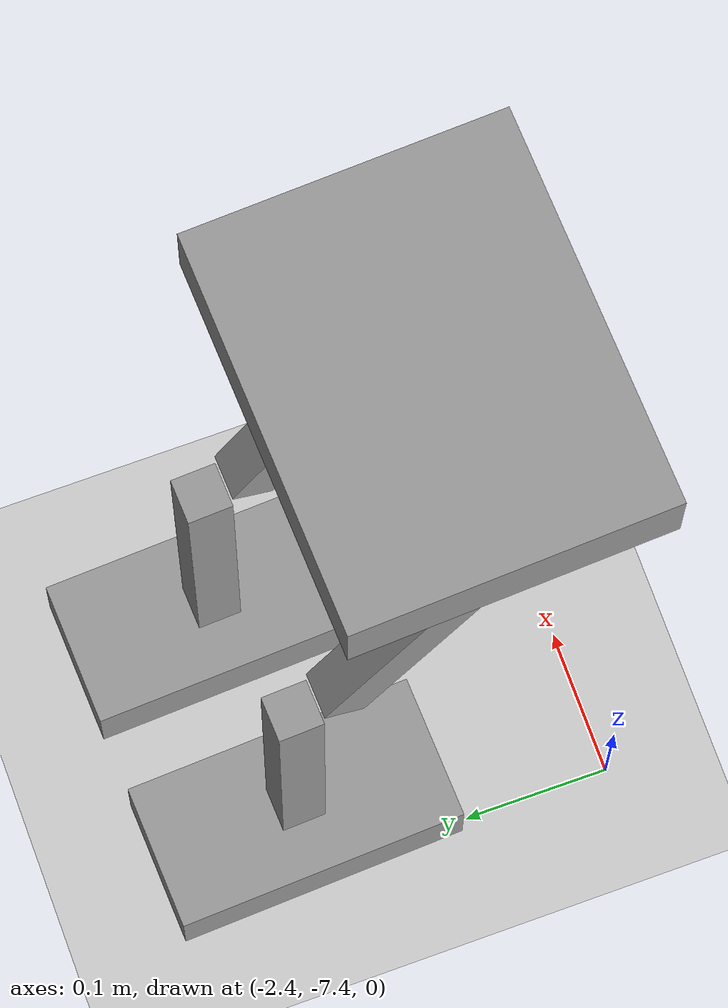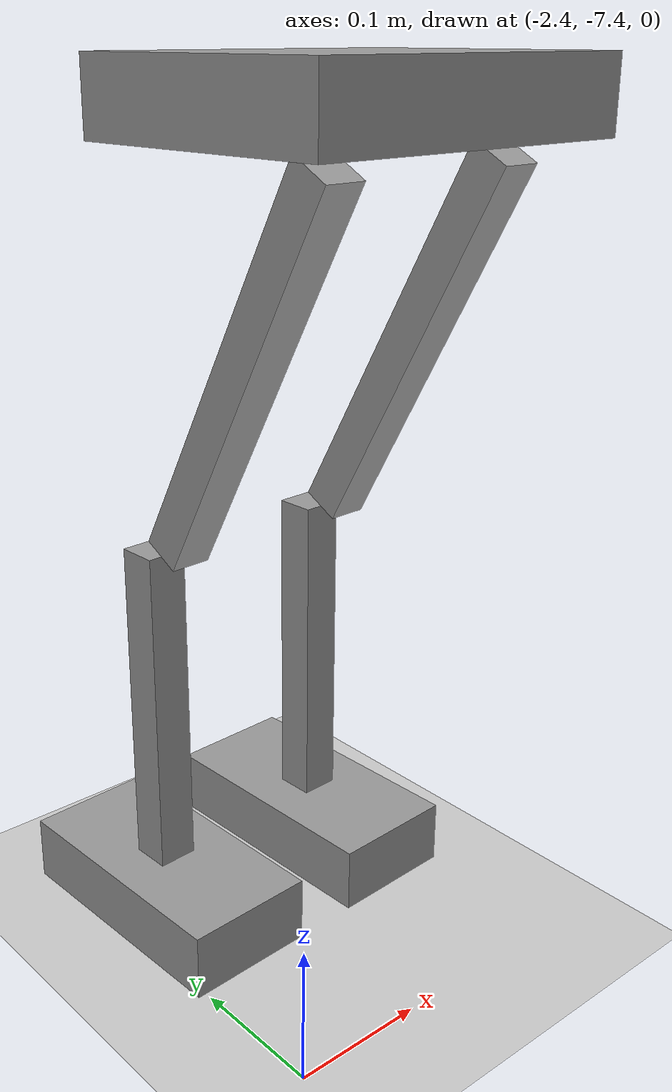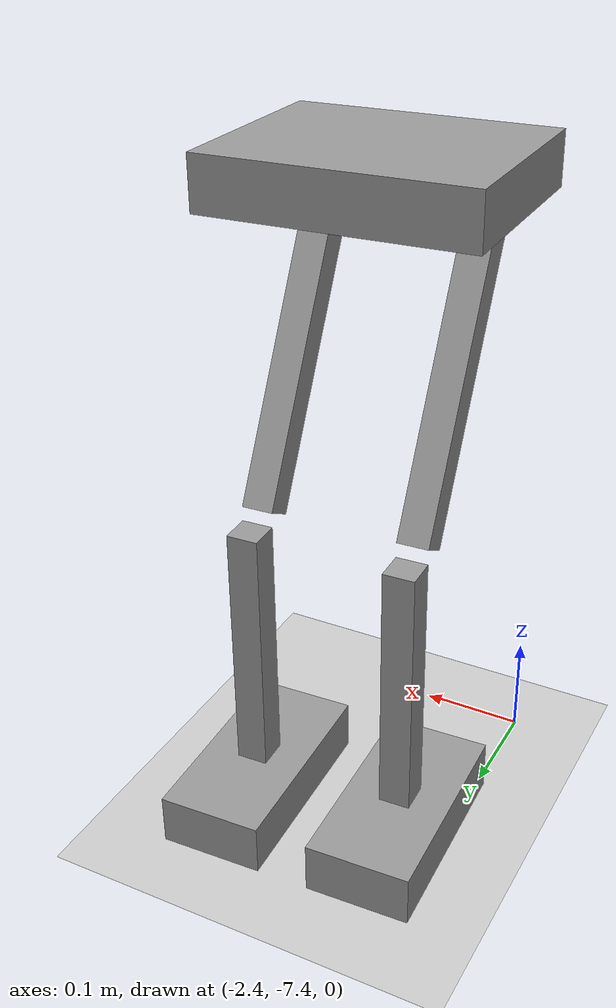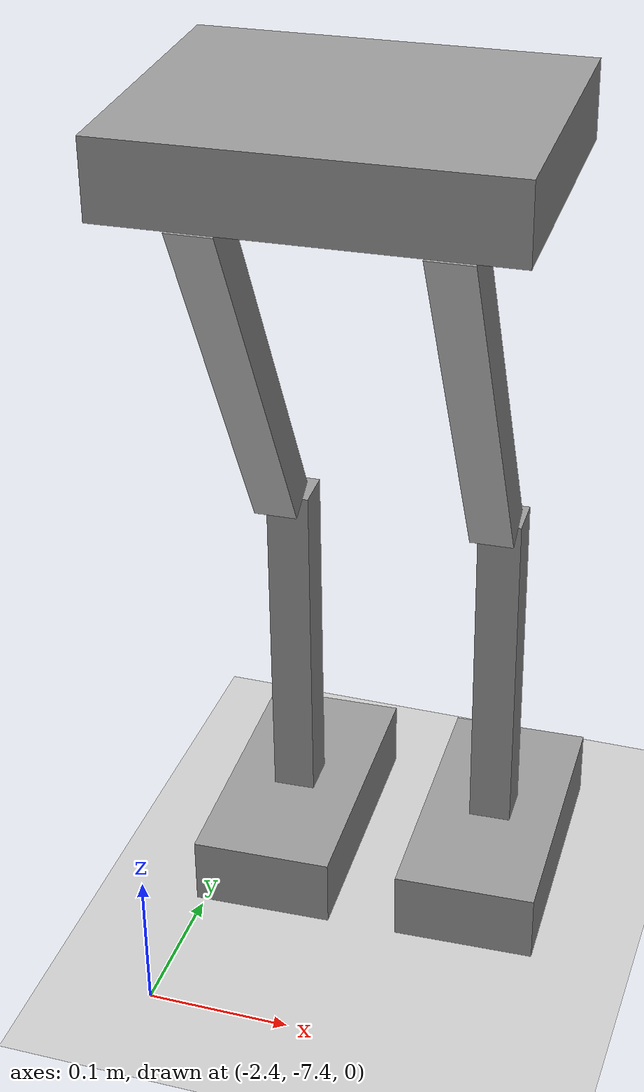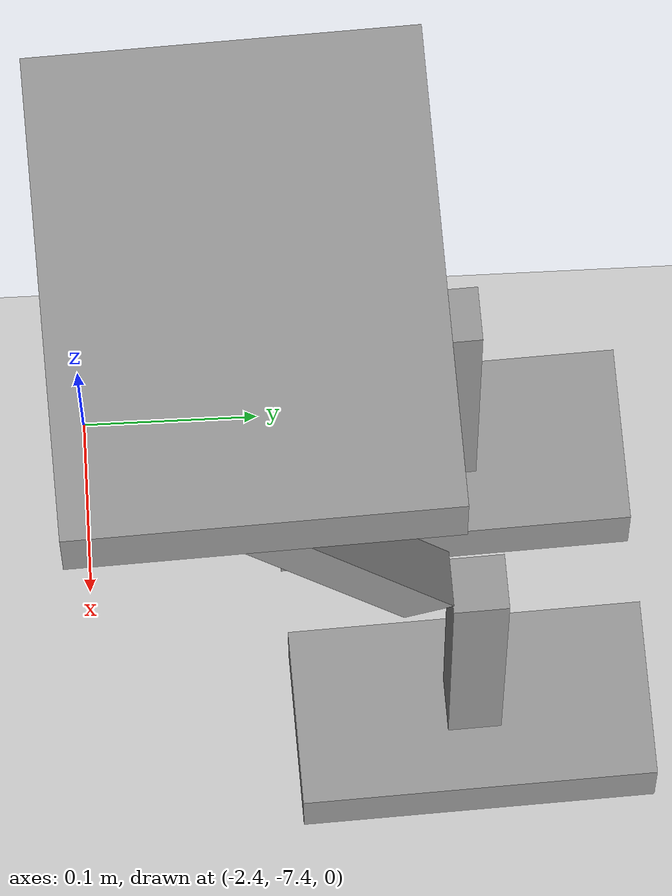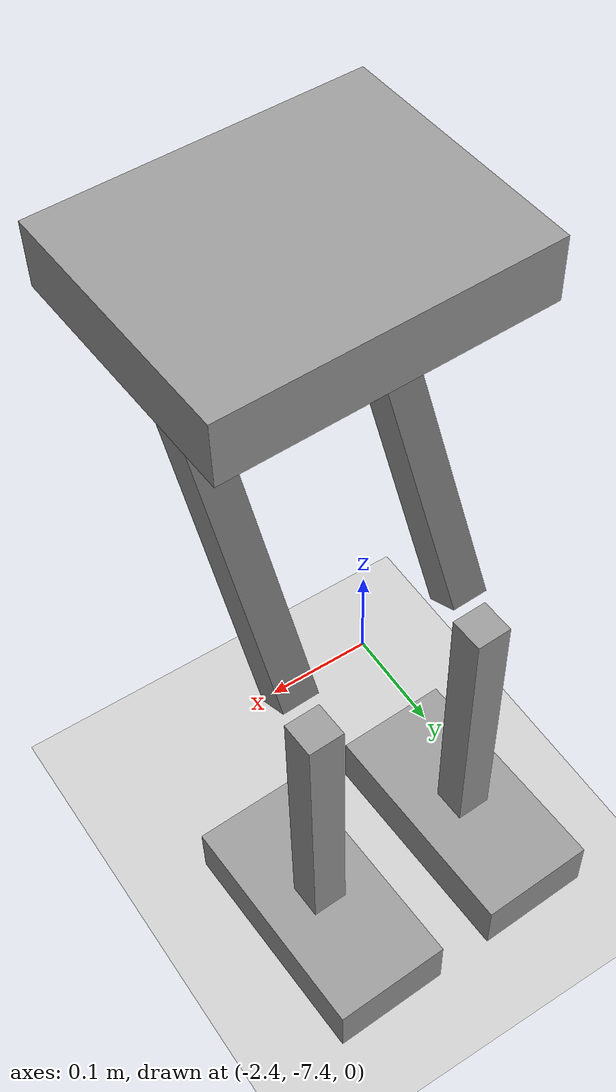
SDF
<sdf version="1.6">
 <world name="default">
  <model name="ground_plane">
   <static>1</static>
   <link name="link">
    <collision name="collision">
     <geometry><plane><normal>0 0 1</normal><size>100 100</size></plane></geometry>
     <surface><friction><ode><mu>100</mu><mu2>50</mu2></ode></friction></surface>
    </collision>
    <visual name="visual">
     <cast_shadows>0</cast_shadows>
     <geometry><plane><normal>0 0 1</normal><size>100 100</size></plane></geometry>
     <material>
      <script><uri>file://media/materials/scripts/gazebo.material</uri><name>Gazebo/Grey</name></script>
     </material>
    </visual>
   </link>
  </model>
  <model name="HumonoidRobot_4">
   <link name="link_0">
    <pose>-0.075081 0.045022 -0.236474 0 -0 0</pose>
    <inertial>
     <mass>1</mass>
     <inertia>
      <ixx>0.166667</ixx>
      <ixy>0</ixy>
      <ixz>0</ixz>
      <iyy>0.166667</iyy>
      <iyz>0</iyz>
      <izz>0.166667</izz>
     </inertia>
    </inertial>
    <visual name="visual">
     <geometry><box><size>0.1 0.2 0.05</size></box></geometry>
     <material>
      <lighting>1</lighting>
      <script><uri>file://media/materials/scripts/gazebo.material</uri><name>Gazebo/Grey</name></script>
      <shader type="pixel"><normal_map>__default__</normal_map></shader>
      <ambient>0.3 0.3 0.3 1</ambient>
      <diffuse>0.7 0.7 0.7 1</diffuse>
      <specular>0.01 0.01 0.01 1</specular>
      <emissive>0 0 0 1</emissive>
     </material>
    </visual>
    <collision name="collision">
     <geometry><box><size>0.1 0.2 0.05</size></box></geometry>
     <surface>
      <friction>
       <ode><mu>1</mu><mu2>1</mu2><fdir1>0 0 0</fdir1><slip1>0</slip1><slip2>0</slip2></ode>
       <torsional>
        <coefficient>1</coefficient>
        <patch_radius>0</patch_radius>
        <surface_radius>0</surface_radius>
        <use_patch_radius>1</use_patch_radius>
        <ode><slip>0</slip></ode>
       </torsional>
      </friction>
      <bounce><restitution_coefficient>0</restitution_coefficient><threshold>1e+06</threshold></bounce>
      <contact>
       <collide_without_contact>0</collide_without_contact>
       <collide_without_contact_bitmask>1</collide_without_contact_bitmask>
       <collide_bitmask>1</collide_bitmask>
       <ode>
        <soft_cfm>0</soft_cfm>
        <soft_erp>0.2</soft_erp>
        <kp>1e+13</kp>
        <kd>1</kd>
        <max_vel>0.01</max_vel>
        <min_depth>0</min_depth>
       </ode>
       <bullet>
        <split_impulse>1</split_impulse>
        <split_impulse_penetration_threshold>-0.01</split_impulse_penetration_threshold>
        <soft_cfm>0</soft_cfm>
        <soft_erp>0.2</soft_erp>
        <kp>1e+13</kp>
        <kd>1</kd>
       </bullet>
      </contact>
     </surface>
    </collision>
   </link>
   <link name="link_0_clone">
    <pose>0.074919 0.045022 -0.236474 0 -0 0</pose>
    <inertial>
     <mass>1</mass>
     <inertia>
      <ixx>0.166667</ixx>
      <ixy>0</ixy>
      <ixz>0</ixz>
      <iyy>0.166667</iyy>
      <iyz>0</iyz>
      <izz>0.166667</izz>
     </inertia>
    </inertial>
    <visual name="visual">
     <geometry><box><size>0.1 0.2 0.05</size></box></geometry>
     <material>
      <lighting>1</lighting>
      <script><uri>file://media/materials/scripts/gazebo.material</uri><name>Gazebo/Grey</name></script>
      <shader type="pixel"><normal_map>__default__</normal_map></shader>
      <ambient>0.3 0.3 0.3 1</ambient>
      <diffuse>0.7 0.7 0.7 1</diffuse>
      <specular>0.01 0.01 0.01 1</specular>
      <emissive>0 0 0 1</emissive>
     </material>
    </visual>
    <collision name="collision">
     <geometry><box><size>0.1 0.2 0.05</size></box></geometry>
     <surface>
      <friction>
       <ode><mu>1</mu><mu2>1</mu2><fdir1>0 0 0</fdir1><slip1>0</slip1><slip2>0</slip2></ode>
       <torsional>
        <coefficient>1</coefficient>
        <patch_radius>0</patch_radius>
        <surface_radius>0</surface_radius>
        <use_patch_radius>1</use_patch_radius>
        <ode><slip>0</slip></ode>
       </torsional>
      </friction>
      <bounce><restitution_coefficient>0</restitution_coefficient><threshold>1e+06</threshold></bounce>
      <contact>
       <collide_without_contact>0</collide_without_contact>
       <collide_without_contact_bitmask>1</collide_without_contact_bitmask>
       <collide_bitmask>1</collide_bitmask>
       <ode>
        <soft_cfm>0</soft_cfm>
        <soft_erp>0.2</soft_erp>
        <kp>1e+13</kp>
        <kd>1</kd>
        <max_vel>0.01</max_vel>
        <min_depth>0</min_depth>
       </ode>
       <bullet>
        <split_impulse>1</split_impulse>
        <split_impulse_penetration_threshold>-0.01</split_impulse_penetration_threshold>
        <soft_cfm>0</soft_cfm>
        <soft_erp>0.2</soft_erp>
        <kp>1e+13</kp>
        <kd>1</kd>
       </bullet>
      </contact>
     </surface>
    </collision>
   </link>
   <link name="link_0_clone_0">
    <pose>0.000486 -0.069978 0.341184 0 -0 0</pose>
    <inertial>
     <mass>1</mass>
     <inertia>
      <ixx>0.166667</ixx>
      <ixy>0</ixy>
      <ixz>0</ixz>
      <iyy>0.166667</iyy>
      <iyz>0</iyz>
      <izz>0.166667</izz>
     </inertia>
    </inertial>
    <visual name="visual">
     <geometry><box><size>0.25 0.2 0.05</size></box></geometry>
     <material>
      <lighting>1</lighting>
      <script><uri>file://media/materials/scripts/gazebo.material</uri><name>Gazebo/Grey</name></script>
      <shader type="pixel"><normal_map>__default__</normal_map></shader>
      <ambient>0.3 0.3 0.3 1</ambient>
      <diffuse>0.7 0.7 0.7 1</diffuse>
      <specular>0.01 0.01 0.01 1</specular>
      <emissive>0 0 0 1</emissive>
     </material>
    </visual>
    <collision name="collision">
     <geometry><box><size>0.25 0.2 0.05</size></box></geometry>
     <surface>
      <friction>
       <ode><mu>1</mu><mu2>1</mu2><fdir1>0 0 0</fdir1><slip1>0</slip1><slip2>0</slip2></ode>
       <torsional>
        <coefficient>1</coefficient>
        <patch_radius>0</patch_radius>
        <surface_radius>0</surface_radius>
        <use_patch_radius>1</use_patch_radius>
        <ode><slip>0</slip></ode>
       </torsional>
      </friction>
      <bounce><restitution_coefficient>0</restitution_coefficient><threshold>1e+06</threshold></bounce>
      <contact>
       <collide_without_contact>0</collide_without_contact>
       <collide_without_contact_bitmask>1</collide_without_contact_bitmask>
       <collide_bitmask>1</collide_bitmask>
       <ode>
        <soft_cfm>0</soft_cfm>
        <soft_erp>0.2</soft_erp>
        <kp>1e+13</kp>
        <kd>1</kd>
        <max_vel>0.01</max_vel>
        <min_depth>0</min_depth>
       </ode>
       <bullet>
        <split_impulse>1</split_impulse>
        <split_impulse_penetration_threshold>-0.01</split_impulse_penetration_threshold>
        <soft_cfm>0</soft_cfm>
        <soft_erp>0.2</soft_erp>
        <kp>1e+13</kp>
        <kd>1</kd>
       </bullet>
      </contact>
     </surface>
    </collision>
   </link>
   <link name="link_1">
    <pose>-0.075081 0.045022 -0.111474 0 -0 0</pose>
    <inertial>
     <mass>1</mass>
     <inertia>
      <ixx>0.166667</ixx>
      <ixy>0</ixy>
      <ixz>0</ixz>
      <iyy>0.166667</iyy>
      <iyz>0</iyz>
      <izz>0.166667</izz>
     </inertia>
    </inertial>
    <visual name="visual">
     <geometry><box><size>0.03 0.03 0.3</size></box></geometry>
     <material>
      <lighting>1</lighting>
      <script><uri>file://media/materials/scripts/gazebo.material</uri><name>Gazebo/Grey</name></script>
      <shader type="pixel"><normal_map>__default__</normal_map></shader>
      <ambient>0.3 0.3 0.3 1</ambient>
      <diffuse>0.7 0.7 0.7 1</diffuse>
      <specular>0.01 0.01 0.01 1</specular>
      <emissive>0 0 0 1</emissive>
     </material>
    </visual>
    <collision name="collision">
     <geometry><box><size>0.03 0.03 0.3</size></box></geometry>
     <surface>
      <friction>
       <ode><mu>1</mu><mu2>1</mu2><fdir1>0 0 0</fdir1><slip1>0</slip1><slip2>0</slip2></ode>
       <torsional>
        <coefficient>1</coefficient>
        <patch_radius>0</patch_radius>
        <surface_radius>0</surface_radius>
        <use_patch_radius>1</use_patch_radius>
        <ode><slip>0</slip></ode>
       </torsional>
      </friction>
      <bounce><restitution_coefficient>0</restitution_coefficient><threshold>1e+06</threshold></bounce>
      <contact>
       <collide_without_contact>0</collide_without_contact>
       <collide_without_contact_bitmask>1</collide_without_contact_bitmask>
       <collide_bitmask>1</collide_bitmask>
       <ode>
        <soft_cfm>0</soft_cfm>
        <soft_erp>0.2</soft_erp>
        <kp>1e+13</kp>
        <kd>1</kd>
        <max_vel>0.01</max_vel>
        <min_depth>0</min_depth>
       </ode>
       <bullet>
        <split_impulse>1</split_impulse>
        <split_impulse_penetration_threshold>-0.01</split_impulse_penetration_threshold>
        <soft_cfm>0</soft_cfm>
        <soft_erp>0.2</soft_erp>
        <kp>1e+13</kp>
        <kd>1</kd>
       </bullet>
      </contact>
     </surface>
    </collision>
   </link>
   <link name="link_1_clone">
    <pose>0.074919 0.045022 -0.111474 0 -0 0</pose>
    <inertial>
     <mass>1</mass>
     <inertia>
      <ixx>0.166667</ixx>
      <ixy>0</ixy>
      <ixz>0</ixz>
      <iyy>0.166667</iyy>
      <iyz>0</iyz>
      <izz>0.166667</izz>
     </inertia>
    </inertial>
    <visual name="visual">
     <geometry><box><size>0.03 0.03 0.3</size></box></geometry>
     <material>
      <lighting>1</lighting>
      <script><uri>file://media/materials/scripts/gazebo.material</uri><name>Gazebo/Grey</name></script>
      <shader type="pixel"><normal_map>__default__</normal_map></shader>
      <ambient>0.3 0.3 0.3 1</ambient>
      <diffuse>0.7 0.7 0.7 1</diffuse>
      <specular>0.01 0.01 0.01 1</specular>
      <emissive>0 0 0 1</emissive>
     </material>
    </visual>
    <collision name="collision">
     <geometry><box><size>0.03 0.03 0.3</size></box></geometry>
     <surface>
      <friction>
       <ode><mu>1</mu><mu2>1</mu2><fdir1>0 0 0</fdir1><slip1>0</slip1><slip2>0</slip2></ode>
       <torsional>
        <coefficient>1</coefficient>
        <patch_radius>0</patch_radius>
        <surface_radius>0</surface_radius>
        <use_patch_radius>1</use_patch_radius>
        <ode><slip>0</slip></ode>
       </torsional>
      </friction>
      <bounce><restitution_coefficient>0</restitution_coefficient><threshold>1e+06</threshold></bounce>
      <contact>
       <collide_without_contact>0</collide_without_contact>
       <collide_without_contact_bitmask>1</collide_without_contact_bitmask>
       <collide_bitmask>1</collide_bitmask>
       <ode>
        <soft_cfm>0</soft_cfm>
        <soft_erp>0.2</soft_erp>
        <kp>1e+13</kp>
        <kd>1</kd>
        <max_vel>0.01</max_vel>
        <min_depth>0</min_depth>
       </ode>
       <bullet>
        <split_impulse>1</split_impulse>
        <split_impulse_penetration_threshold>-0.01</split_impulse_penetration_threshold>
        <soft_cfm>0</soft_cfm>
        <soft_erp>0.2</soft_erp>
        <kp>1e+13</kp>
        <kd>1</kd>
       </bullet>
      </contact>
     </surface>
    </collision>
   </link>
   <link name="link_1_clone_0">
    <pose>-0.075081 -0.055055 0.177355 0.5 -0 0</pose>
    <inertial>
     <mass>1</mass>
     <inertia>
      <ixx>0.166667</ixx>
      <ixy>0</ixy>
      <ixz>0</ixz>
      <iyy>0.166667</iyy>
      <iyz>0</iyz>
      <izz>0.166667</izz>
     </inertia>
    </inertial>
    <visual name="visual">
     <geometry><box><size>0.03 0.03 0.3</size></box></geometry>
     <material>
      <lighting>1</lighting>
      <script><uri>file://media/materials/scripts/gazebo.material</uri><name>Gazebo/Grey</name></script>
      <shader type="pixel"><normal_map>__default__</normal_map></shader>
      <ambient>0.3 0.3 0.3 1</ambient>
      <diffuse>0.7 0.7 0.7 1</diffuse>
      <specular>0.01 0.01 0.01 1</specular>
      <emissive>0 0 0 1</emissive>
     </material>
    </visual>
    <collision name="collision">
     <geometry><box><size>0.03 0.03 0.3</size></box></geometry>
     <surface>
      <friction>
       <ode><mu>1</mu><mu2>1</mu2><fdir1>0 0 0</fdir1><slip1>0</slip1><slip2>0</slip2></ode>
       <torsional>
        <coefficient>1</coefficient>
        <patch_radius>0</patch_radius>
        <surface_radius>0</surface_radius>
        <use_patch_radius>1</use_patch_radius>
        <ode><slip>0</slip></ode>
       </torsional>
      </friction>
      <bounce><restitution_coefficient>0</restitution_coefficient><threshold>1e+06</threshold></bounce>
      <contact>
       <collide_without_contact>0</collide_without_contact>
       <collide_without_contact_bitmask>1</collide_without_contact_bitmask>
       <collide_bitmask>1</collide_bitmask>
       <ode>
        <soft_cfm>0</soft_cfm>
        <soft_erp>0.2</soft_erp>
        <kp>1e+13</kp>
        <kd>1</kd>
        <max_vel>0.01</max_vel>
        <min_depth>0</min_depth>
       </ode>
       <bullet>
        <split_impulse>1</split_impulse>
        <split_impulse_penetration_threshold>-0.01</split_impulse_penetration_threshold>
        <soft_cfm>0</soft_cfm>
        <soft_erp>0.2</soft_erp>
        <kp>1e+13</kp>
        <kd>1</kd>
       </bullet>
      </contact>
     </surface>
    </collision>
   </link>
   <link name="link_1_clone_1">
    <pose>0.074919 -0.055055 0.177355 0.5 -0 0</pose>
    <inertial>
     <mass>1</mass>
     <inertia>
      <ixx>0.166667</ixx>
      <ixy>0</ixy>
      <ixz>0</ixz>
      <iyy>0.166667</iyy>
      <iyz>0</iyz>
      <izz>0.166667</izz>
     </inertia>
    </inertial>
    <visual name="visual">
     <geometry><box><size>0.03 0.03 0.3</size></box></geometry>
     <material>
      <lighting>1</lighting>
      <script><uri>file://media/materials/scripts/gazebo.material</uri><name>Gazebo/Grey</name></script>
      <shader type="pixel"><normal_map>__default__</normal_map></shader>
      <ambient>0.3 0.3 0.3 1</ambient>
      <diffuse>0.7 0.7 0.7 1</diffuse>
      <specular>0.01 0.01 0.01 1</specular>
      <emissive>0 0 0 1</emissive>
     </material>
    </visual>
    <collision name="collision">
     <geometry><box><size>0.03 0.03 0.3</size></box></geometry>
     <surface>
      <friction>
       <ode><mu>1</mu><mu2>1</mu2><fdir1>0 0 0</fdir1><slip1>0</slip1><slip2>0</slip2></ode>
       <torsional>
        <coefficient>1</coefficient>
        <patch_radius>0</patch_radius>
        <surface_radius>0</surface_radius>
        <use_patch_radius>1</use_patch_radius>
        <ode><slip>0</slip></ode>
       </torsional>
      </friction>
      <bounce><restitution_coefficient>0</restitution_coefficient><threshold>1e+06</threshold></bounce>
      <contact>
       <collide_without_contact>0</collide_without_contact>
       <collide_without_contact_bitmask>1</collide_without_contact_bitmask>
       <collide_bitmask>1</collide_bitmask>
       <ode>
        <soft_cfm>0</soft_cfm>
        <soft_erp>0.2</soft_erp>
        <kp>1e+13</kp>
        <kd>1</kd>
        <max_vel>0.01</max_vel>
        <min_depth>0</min_depth>
       </ode>
       <bullet>
        <split_impulse>1</split_impulse>
        <split_impulse_penetration_threshold>-0.01</split_impulse_penetration_threshold>
        <soft_cfm>0</soft_cfm>
        <soft_erp>0.2</soft_erp>
        <kp>1e+13</kp>
        <kd>1</kd>
       </bullet>
      </contact>
     </surface>
    </collision>
   </link>
   <joint name="link_0_JOINT_0" type="fixed">
    <parent>link_0</parent>
    <child>link_1</child>
    <physics>
     <ode><limit><cfm>0</cfm><erp>0.2</erp></limit><suspension><cfm>0</cfm><erp>0.2</erp></suspension></ode>
    </physics>
   </joint>
   <joint name="link_0_clone_JOINT_1" type="fixed">
    <parent>link_0_clone</parent>
    <child>link_1_clone</child>
    <physics>
     <ode><limit><cfm>0</cfm><erp>0.2</erp></limit><suspension><cfm>0</cfm><erp>0.2</erp></suspension></ode>
    </physics>
   </joint>
   <joint name="link_1_JOINT_2" type="fixed">
    <parent>link_1</parent>
    <child>link_1_clone_0</child>
    <physics>
     <ode><limit><cfm>0</cfm><erp>0.2</erp></limit><suspension><cfm>0</cfm><erp>0.2</erp></suspension></ode>
    </physics>
   </joint>
   <joint name="link_1_clone_0_JOINT_4" type="fixed">
    <parent>link_1_clone_0</parent>
    <child>link_0_clone_0</child>
    <physics>
     <ode><limit><cfm>0</cfm><erp>0.2</erp></limit><suspension><cfm>0</cfm><erp>0.2</erp></suspension></ode>
    </physics>
   </joint>
   <joint name="link_1_clone_1_JOINT_5" type="fixed">
    <parent>link_1_clone_1</parent>
    <child>link_0_clone_0</child>
    <physics>
     <ode><limit><cfm>0</cfm><erp>0.2</erp></limit><suspension><cfm>0</cfm><erp>0.2</erp></suspension></ode>
    </physics>
   </joint>
   <joint name="link_1_clone_JOINT_3" type="revolute">
    <parent>link_1_clone</parent>
    <child>link_1_clone_1</child>
    <axis>
     <xyz>1 0 0</xyz>
     <use_parent_model_frame>0</use_parent_model_frame>
     <limit>
      <lower>-1.79769e+308</lower>
      <upper>1.79769e+308</upper>
      <effort>-1</effort>
      <velocity>-1</velocity>
     </limit>
     <dynamics>
      <spring_reference>0</spring_reference>
      <spring_stiffness>0</spring_stiffness>
      <damping>0</damping>
     </dynamics>
    </axis>
    <physics>
     <ode><limit><cfm>0</cfm><erp>0.2</erp></limit><suspension><cfm>0</cfm><erp>0.2</erp></suspension></ode>
    </physics>
   </joint>
   <static>0</static>
   <pose>-2.28367 -7.23432 0.261474 1e-06 -1e-06 0.040137</pose>
  </model>
 </world>
</sdf>
